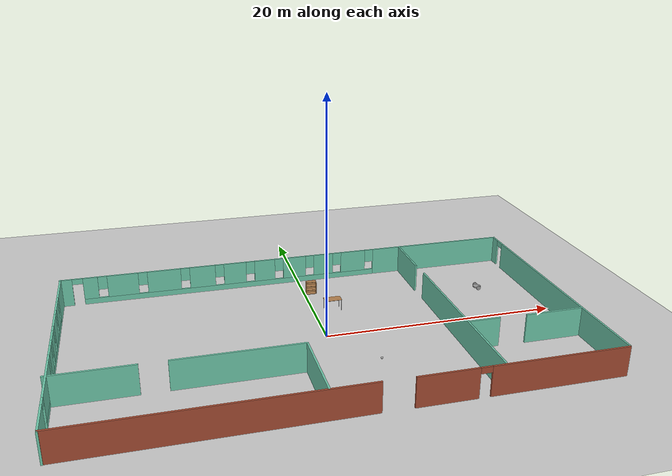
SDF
<sdf version="1.6">
 <world name="default">
  <model name="ground_plane">
   <static>1</static>
   <link name="link">
    <collision name="collision">
     <geometry><plane><normal>0 0 1</normal><size>100 100</size></plane></geometry>
     <surface>
      <contact><collide_bitmask>65535</collide_bitmask></contact>
      <friction><ode><mu>100</mu><mu2>50</mu2></ode></friction>
     </surface>
    </collision>
    <visual name="visual">
     <cast_shadows>0</cast_shadows>
     <geometry><plane><normal>0 0 1</normal><size>100 100</size></plane></geometry>
     <material>
      <script><uri>file://media/materials/scripts/gazebo.material</uri><name>Gazebo/Grey</name></script>
     </material>
    </visual>
   </link>
  </model>
  <model name="office">
   <pose>-0.6589 -0.171152 0 0 -0 0</pose>
   <link name="Wall_0">
    <pose>-20.5476 -0.068828 0 0 0 -1.5708</pose>
    <visual name="Wall_0_Visual_0">
     <pose>-9.5312 0 1.25 0 -0 0</pose>
     <geometry><box><size>3.4376 0.15 2.5</size></box></geometry>
     <material>
      <script><uri>file://media/materials/scripts/gazebo.material</uri><name>Gazebo/Grey</name></script>
      <ambient>0.435294 0.796078 0.67451 1</ambient>
     </material>
     <meta><layer>0</layer></meta>
    </visual>
    <collision name="Wall_0_Collision_0">
     <geometry><box><size>3.4376 0.15 2.5</size></box></geometry>
     <pose>-9.5312 0 1.25 0 -0 0</pose>
    </collision>
    <visual name="Wall_0_Visual_1">
     <pose>9.76077 0 1.25 0 -0 0</pose>
     <geometry><box><size>2.97847 0.15 2.5</size></box></geometry>
     <material>
      <script><uri>file://media/materials/scripts/gazebo.material</uri><name>Gazebo/Grey</name></script>
      <ambient>0.435294 0.796078 0.67451 1</ambient>
     </material>
     <meta><layer>0</layer></meta>
    </visual>
    <collision name="Wall_0_Collision_1">
     <geometry><box><size>2.97847 0.15 2.5</size></box></geometry>
     <pose>9.76077 0 1.25 0 -0 0</pose>
    </collision>
    <visual name="Wall_0_Visual_2">
     <pose>-0.220435 0 0.25 0 -0 0</pose>
     <geometry><box><size>15.1839 0.15 0.5</size></box></geometry>
     <material>
      <script><uri>file://media/materials/scripts/gazebo.material</uri><name>Gazebo/Grey</name></script>
      <ambient>0.435294 0.796078 0.67451 1</ambient>
     </material>
     <meta><layer>0</layer></meta>
    </visual>
    <collision name="Wall_0_Collision_2">
     <geometry><box><size>15.1839 0.15 0.5</size></box></geometry>
     <pose>-0.220435 0 0.25 0 -0 0</pose>
    </collision>
    <visual name="Wall_0_Visual_3">
     <pose>-6.24233 0 1.5 0 -0 0</pose>
     <geometry><box><size>1.54015 0.15 2</size></box></geometry>
     <material>
      <script><uri>file://media/materials/scripts/gazebo.material</uri><name>Gazebo/Grey</name></script>
      <ambient>0.435294 0.796078 0.67451 1</ambient>
     </material>
     <meta><layer>0</layer></meta>
    </visual>
    <collision name="Wall_0_Collision_3">
     <geometry><box><size>1.54015 0.15 2</size></box></geometry>
     <pose>-6.24233 0 1.5 0 -0 0</pose>
    </collision>
    <visual name="Wall_0_Visual_4">
     <pose>-3.69569 0 1.5 0 -0 0</pose>
     <geometry><box><size>1.95312 0.15 2</size></box></geometry>
     <material>
      <script><uri>file://media/materials/scripts/gazebo.material</uri><name>Gazebo/Grey</name></script>
      <ambient>0.435294 0.796078 0.67451 1</ambient>
     </material>
     <meta><layer>0</layer></meta>
    </visual>
    <collision name="Wall_0_Collision_4">
     <geometry><box><size>1.95312 0.15 2</size></box></geometry>
     <pose>-3.69569 0 1.5 0 -0 0</pose>
    </collision>
    <visual name="Wall_0_Visual_5">
     <pose>-1.17199 0 1.5 0 -0 0</pose>
     <geometry><box><size>1.49427 0.15 2</size></box></geometry>
     <material>
      <script><uri>file://media/materials/scripts/gazebo.material</uri><name>Gazebo/Grey</name></script>
      <ambient>0.435294 0.796078 0.67451 1</ambient>
     </material>
     <meta><layer>0</layer></meta>
    </visual>
    <collision name="Wall_0_Collision_5">
     <geometry><box><size>1.49427 0.15 2</size></box></geometry>
     <pose>-1.17199 0 1.5 0 -0 0</pose>
    </collision>
    <visual name="Wall_0_Visual_6">
     <pose>1.05344 0 1.5 0 -0 0</pose>
     <geometry><box><size>1.35661 0.15 2</size></box></geometry>
     <material>
      <script><uri>file://media/materials/scripts/gazebo.material</uri><name>Gazebo/Grey</name></script>
      <ambient>0.435294 0.796078 0.67451 1</ambient>
     </material>
     <meta><layer>0</layer></meta>
    </visual>
    <collision name="Wall_0_Collision_6">
     <geometry><box><size>1.35661 0.15 2</size></box></geometry>
     <pose>1.05344 0 1.5 0 -0 0</pose>
    </collision>
    <visual name="Wall_0_Visual_7">
     <pose>4.95164 0 1.5 0 -0 0</pose>
     <geometry><box><size>4.83978 0.15 2</size></box></geometry>
     <material>
      <script><uri>file://media/materials/scripts/gazebo.material</uri><name>Gazebo/Grey</name></script>
      <ambient>0.435294 0.796078 0.67451 1</ambient>
     </material>
     <meta><layer>0</layer></meta>
    </visual>
    <collision name="Wall_0_Collision_7">
     <geometry><box><size>4.83978 0.15 2</size></box></geometry>
     <pose>4.95164 0 1.5 0 -0 0</pose>
    </collision>
    <visual name="Wall_0_Visual_8">
     <pose>-7.4124 0 1.9 0 -0 0</pose>
     <geometry><box><size>0.8 0.15 1.2</size></box></geometry>
     <material>
      <script><uri>file://media/materials/scripts/gazebo.material</uri><name>Gazebo/Grey</name></script>
      <ambient>0.435294 0.796078 0.67451 1</ambient>
     </material>
     <meta><layer>0</layer></meta>
    </visual>
    <collision name="Wall_0_Collision_8">
     <geometry><box><size>0.8 0.15 1.2</size></box></geometry>
     <pose>-7.4124 0 1.9 0 -0 0</pose>
    </collision>
    <visual name="Wall_0_Visual_9">
     <pose>-5.07225 0 1.9 0 -0 0</pose>
     <geometry><box><size>0.8 0.15 1.2</size></box></geometry>
     <material>
      <script><uri>file://media/materials/scripts/gazebo.material</uri><name>Gazebo/Grey</name></script>
      <ambient>0.435294 0.796078 0.67451 1</ambient>
     </material>
     <meta><layer>0</layer></meta>
    </visual>
    <collision name="Wall_0_Collision_9">
     <geometry><box><size>0.8 0.15 1.2</size></box></geometry>
     <pose>-5.07225 0 1.9 0 -0 0</pose>
    </collision>
    <visual name="Wall_0_Visual_10">
     <pose>-2.31913 0 1.9 0 -0 0</pose>
     <geometry><box><size>0.8 0.15 1.2</size></box></geometry>
     <material>
      <script><uri>file://media/materials/scripts/gazebo.material</uri><name>Gazebo/Grey</name></script>
      <ambient>0.435294 0.796078 0.67451 1</ambient>
     </material>
     <meta><layer>0</layer></meta>
    </visual>
    <collision name="Wall_0_Collision_10">
     <geometry><box><size>0.8 0.15 1.2</size></box></geometry>
     <pose>-2.31913 0 1.9 0 -0 0</pose>
    </collision>
    <visual name="Wall_0_Visual_11">
     <pose>-0.024862 0 1.9 0 -0 0</pose>
     <geometry><box><size>0.8 0.15 1.2</size></box></geometry>
     <material>
      <script><uri>file://media/materials/scripts/gazebo.material</uri><name>Gazebo/Grey</name></script>
      <ambient>0.435294 0.796078 0.67451 1</ambient>
     </material>
     <meta><layer>0</layer></meta>
    </visual>
    <collision name="Wall_0_Collision_11">
     <geometry><box><size>0.8 0.15 1.2</size></box></geometry>
     <pose>-0.024862 0 1.9 0 -0 0</pose>
    </collision>
    <visual name="Wall_0_Visual_12">
     <pose>2.13175 0 1.9 0 -0 0</pose>
     <geometry><box><size>0.8 0.15 1.2</size></box></geometry>
     <material>
      <script><uri>file://media/materials/scripts/gazebo.material</uri><name>Gazebo/Grey</name></script>
      <ambient>0.435294 0.796078 0.67451 1</ambient>
     </material>
     <meta><layer>0</layer></meta>
    </visual>
    <collision name="Wall_0_Collision_12">
     <geometry><box><size>0.8 0.15 1.2</size></box></geometry>
     <pose>2.13175 0 1.9 0 -0 0</pose>
    </collision>
    <visual name="Wall_0_Visual_13">
     <pose>7.82153 0 2.25 0 -0 0</pose>
     <geometry><box><size>0.9 0.15 0.5</size></box></geometry>
     <material>
      <script><uri>file://media/materials/scripts/gazebo.material</uri><name>Gazebo/Grey</name></script>
      <ambient>0.435294 0.796078 0.67451 1</ambient>
     </material>
     <meta><layer>0</layer></meta>
    </visual>
    <collision name="Wall_0_Collision_13">
     <geometry><box><size>0.9 0.15 0.5</size></box></geometry>
     <pose>7.82153 0 2.25 0 -0 0</pose>
    </collision>
   </link>
   <link name="Wall_11">
    <collision name="Wall_11_Collision">
     <geometry><box><size>5 0.15 2.5</size></box></geometry>
     <pose>0 0 1.25 0 -0 0</pose>
    </collision>
    <visual name="Wall_11_Visual">
     <pose>0 0 1.25 0 -0 0</pose>
     <geometry><box><size>5 0.15 2.5</size></box></geometry>
     <material>
      <script><uri>file://media/materials/scripts/gazebo.material</uri><name>Gazebo/Grey</name></script>
      <ambient>0.435294 0.796078 0.67451 1</ambient>
     </material>
     <meta><layer>0</layer></meta>
    </visual>
    <pose>18.3103 -4.77016 0 0 -0 0</pose>
   </link>
   <link name="Wall_13">
    <collision name="Wall_13_Collision">
     <geometry><box><size>6.5 0.15 2.5</size></box></geometry>
     <pose>0 0 1.25 0 -0 0</pose>
    </collision>
    <visual name="Wall_13_Visual">
     <pose>0 0 1.25 0 -0 0</pose>
     <geometry><box><size>6.5 0.15 2.5</size></box></geometry>
     <material>
      <script><uri>file://media/materials/scripts/gazebo.material</uri><name>Gazebo/Grey</name></script>
      <ambient>0.435294 0.796078 0.67451 1</ambient>
     </material>
     <meta><layer>0</layer></meta>
    </visual>
    <pose>-17.6021 -4.77016 0 0 -0 0</pose>
   </link>
   <link name="Wall_15">
    <collision name="Wall_15_Collision">
     <geometry><box><size>10.25 0.15 2.5</size></box></geometry>
     <pose>0 0 1.25 0 -0 0</pose>
    </collision>
    <visual name="Wall_15_Visual">
     <pose>0 0 1.25 0 -0 0</pose>
     <geometry><box><size>10.25 0.15 2.5</size></box></geometry>
     <material>
      <script><uri>file://media/materials/scripts/gazebo.material</uri><name>Gazebo/Grey</name></script>
      <ambient>0.435294 0.796078 0.67451 1</ambient>
     </material>
     <meta><layer>0</layer></meta>
    </visual>
    <pose>-7.1465 -4.77016 0 0 -0 0</pose>
   </link>
   <link name="Wall_16">
    <collision name="Wall_16_Collision">
     <geometry><box><size>6.5 0.15 2.5</size></box></geometry>
     <pose>0 0 1.25 0 -0 0</pose>
    </collision>
    <visual name="Wall_16_Visual">
     <pose>0 0 1.25 0 -0 0</pose>
     <geometry><box><size>6.5 0.15 2.5</size></box></geometry>
     <material>
      <script><uri>file://media/materials/scripts/gazebo.material</uri><name>Gazebo/Grey</name></script>
      <ambient>0.435294 0.796078 0.67451 1</ambient>
     </material>
     <meta><layer>0</layer></meta>
    </visual>
    <pose>-2.0965 -7.94516 0 0 0 -1.5708</pose>
   </link>
   <link name="Wall_18">
    <collision name="Wall_18_Collision">
     <geometry><box><size>22.25 0.15 2.5</size></box></geometry>
     <pose>0 0 1.25 0 -0 0</pose>
    </collision>
    <visual name="Wall_18_Visual">
     <pose>0 0 1.25 0 -0 0</pose>
     <geometry><box><size>22.25 0.15 2.5</size></box></geometry>
     <material>
      <script><uri>file://media/materials/scripts/gazebo.material</uri><name>Gazebo/Bricks</name></script>
      <ambient>1 1 1 1</ambient>
     </material>
     <meta><layer>0</layer></meta>
    </visual>
    <pose>-9.49763 -11.1979 0 0 -0 0</pose>
   </link>
   <link name="Wall_2">
    <pose>20.7771 0.068828 0 0 -0 1.5708</pose>
    <visual name="Wall_2_Visual_0">
     <pose>-0.973723 0 1.25 0 -0 0</pose>
     <geometry><box><size>20.5526 0.15 2.5</size></box></geometry>
     <material>
      <script><uri>file://media/materials/scripts/gazebo.material</uri><name>Gazebo/Grey</name></script>
      <ambient>0.435294 0.796078 0.67451 1</ambient>
     </material>
     <meta><layer>0</layer></meta>
    </visual>
    <collision name="Wall_2_Collision_0">
     <geometry><box><size>20.5526 0.15 2.5</size></box></geometry>
     <pose>-0.973723 0 1.25 0 -0 0</pose>
    </collision>
    <visual name="Wall_2_Visual_1">
     <pose>10.7263 0 1.25 0 -0 0</pose>
     <geometry><box><size>1.04745 0.15 2.5</size></box></geometry>
     <material>
      <script><uri>file://media/materials/scripts/gazebo.material</uri><name>Gazebo/Grey</name></script>
      <ambient>0.435294 0.796078 0.67451 1</ambient>
     </material>
     <meta><layer>0</layer></meta>
    </visual>
    <collision name="Wall_2_Collision_1">
     <geometry><box><size>1.04745 0.15 2.5</size></box></geometry>
     <pose>10.7263 0 1.25 0 -0 0</pose>
    </collision>
    <visual name="Wall_2_Visual_2">
     <pose>9.75255 0 2.25 0 -0 0</pose>
     <geometry><box><size>0.9 0.15 0.5</size></box></geometry>
     <material>
      <script><uri>file://media/materials/scripts/gazebo.material</uri><name>Gazebo/Grey</name></script>
      <ambient>0.435294 0.796078 0.67451 1</ambient>
     </material>
     <meta><layer>0</layer></meta>
    </visual>
    <collision name="Wall_2_Collision_2">
     <geometry><box><size>0.9 0.15 0.5</size></box></geometry>
     <pose>9.75255 0 2.25 0 -0 0</pose>
    </collision>
   </link>
   <link name="Wall_22">
    <pose>12.4086 -11.24 0 0 -0 0</pose>
    <visual name="Wall_22_Visual_0">
     <pose>-5.9779 0 1.25 0 -0 0</pose>
     <geometry><box><size>4.79421 0.15 2.5</size></box></geometry>
     <material>
      <script><uri>file://media/materials/scripts/gazebo.material</uri><name>Gazebo/Bricks</name></script>
      <ambient>1 1 1 1</ambient>
     </material>
     <meta><layer>0</layer></meta>
    </visual>
    <collision name="Wall_22_Collision_0">
     <geometry><box><size>4.79421 0.15 2.5</size></box></geometry>
     <pose>-5.9779 0 1.25 0 -0 0</pose>
    </collision>
    <visual name="Wall_22_Visual_1">
     <pose>2.8471 0 1.25 0 -0 0</pose>
     <geometry><box><size>11.0558 0.15 2.5</size></box></geometry>
     <material>
      <script><uri>file://media/materials/scripts/gazebo.material</uri><name>Gazebo/Bricks</name></script>
      <ambient>1 1 1 1</ambient>
     </material>
     <meta><layer>0</layer></meta>
    </visual>
    <collision name="Wall_22_Collision_1">
     <geometry><box><size>11.0558 0.15 2.5</size></box></geometry>
     <pose>2.8471 0 1.25 0 -0 0</pose>
    </collision>
    <visual name="Wall_22_Visual_2">
     <pose>-3.13079 0 2.25 0 -0 0</pose>
     <geometry><box><size>0.9 0.15 0.5</size></box></geometry>
     <material>
      <script><uri>file://media/materials/scripts/gazebo.material</uri><name>Gazebo/Bricks</name></script>
      <ambient>1 1 1 1</ambient>
     </material>
     <meta><layer>0</layer></meta>
    </visual>
    <collision name="Wall_22_Collision_2">
     <geometry><box><size>0.9 0.15 0.5</size></box></geometry>
     <pose>-3.13079 0 2.25 0 -0 0</pose>
    </collision>
   </link>
   <link name="Wall_3">
    <pose>0.102057 11.2438 0 0 -0 3.14159</pose>
    <visual name="Wall_3_Visual_0">
     <pose>-14.3599 0 1.25 0 -0 0</pose>
     <geometry><box><size>12.7802 0.15 2.5</size></box></geometry>
     <material>
      <script><uri>file://media/materials/scripts/gazebo.material</uri><name>Gazebo/Grey</name></script>
      <ambient>0.435294 0.796078 0.67451 1</ambient>
     </material>
     <meta><layer>0</layer></meta>
    </visual>
    <collision name="Wall_3_Collision_0">
     <geometry><box><size>12.7802 0.15 2.5</size></box></geometry>
     <pose>-14.3599 0 1.25 0 -0 0</pose>
    </collision>
    <visual name="Wall_3_Visual_1">
     <pose>20.2136 0 1.25 0 -0 0</pose>
     <geometry><box><size>1.07276 0.15 2.5</size></box></geometry>
     <material>
      <script><uri>file://media/materials/scripts/gazebo.material</uri><name>Gazebo/Grey</name></script>
      <ambient>0.435294 0.796078 0.67451 1</ambient>
     </material>
     <meta><layer>0</layer></meta>
    </visual>
    <collision name="Wall_3_Collision_1">
     <geometry><box><size>1.07276 0.15 2.5</size></box></geometry>
     <pose>20.2136 0 1.25 0 -0 0</pose>
    </collision>
    <visual name="Wall_3_Visual_2">
     <pose>5.40372 0 0.25 0 -0 0</pose>
     <geometry><box><size>26.747 0.15 0.5</size></box></geometry>
     <material>
      <script><uri>file://media/materials/scripts/gazebo.material</uri><name>Gazebo/Grey</name></script>
      <ambient>0.435294 0.796078 0.67451 1</ambient>
     </material>
     <meta><layer>0</layer></meta>
    </visual>
    <collision name="Wall_3_Collision_2">
     <geometry><box><size>26.747 0.15 0.5</size></box></geometry>
     <pose>5.40372 0 0.25 0 -0 0</pose>
    </collision>
    <visual name="Wall_3_Visual_3">
     <pose>-5.98675 0 1.5 0 -0 0</pose>
     <geometry><box><size>2.36609 0.15 2</size></box></geometry>
     <material>
      <script><uri>file://media/materials/scripts/gazebo.material</uri><name>Gazebo/Grey</name></script>
      <ambient>0.435294 0.796078 0.67451 1</ambient>
     </material>
     <meta><layer>0</layer></meta>
    </visual>
    <collision name="Wall_3_Collision_3">
     <geometry><box><size>2.36609 0.15 2</size></box></geometry>
     <pose>-5.98675 0 1.5 0 -0 0</pose>
    </collision>
    <visual name="Wall_3_Visual_4">
     <pose>-3.07303 0 1.5 0 -0 0</pose>
     <geometry><box><size>1.86135 0.15 2</size></box></geometry>
     <material>
      <script><uri>file://media/materials/scripts/gazebo.material</uri><name>Gazebo/Grey</name></script>
      <ambient>0.435294 0.796078 0.67451 1</ambient>
     </material>
     <meta><layer>0</layer></meta>
    </visual>
    <collision name="Wall_3_Collision_4">
     <geometry><box><size>1.86135 0.15 2</size></box></geometry>
     <pose>-3.07303 0 1.5 0 -0 0</pose>
    </collision>
    <visual name="Wall_3_Visual_5">
     <pose>-0.274028 0 1.5 0 -0 0</pose>
     <geometry><box><size>2.13666 0.15 2</size></box></geometry>
     <material>
      <script><uri>file://media/materials/scripts/gazebo.material</uri><name>Gazebo/Grey</name></script>
      <ambient>0.435294 0.796078 0.67451 1</ambient>
     </material>
     <meta><layer>0</layer></meta>
    </visual>
    <collision name="Wall_3_Collision_5">
     <geometry><box><size>2.13666 0.15 2</size></box></geometry>
     <pose>-0.274028 0 1.5 0 -0 0</pose>
    </collision>
    <visual name="Wall_3_Visual_6">
     <pose>2.54792 0 1.5 0 -0 0</pose>
     <geometry><box><size>1.90724 0.15 2</size></box></geometry>
     <material>
      <script><uri>file://media/materials/scripts/gazebo.material</uri><name>Gazebo/Grey</name></script>
      <ambient>0.435294 0.796078 0.67451 1</ambient>
     </material>
     <meta><layer>0</layer></meta>
    </visual>
    <collision name="Wall_3_Collision_6">
     <geometry><box><size>1.90724 0.15 2</size></box></geometry>
     <pose>2.54792 0 1.5 0 -0 0</pose>
    </collision>
    <visual name="Wall_3_Visual_7">
     <pose>5.32398 0 1.5 0 -0 0</pose>
     <geometry><box><size>2.04489 0.15 2</size></box></geometry>
     <material>
      <script><uri>file://media/materials/scripts/gazebo.material</uri><name>Gazebo/Grey</name></script>
      <ambient>0.435294 0.796078 0.67451 1</ambient>
     </material>
     <meta><layer>0</layer></meta>
    </visual>
    <collision name="Wall_3_Collision_7">
     <geometry><box><size>2.04489 0.15 2</size></box></geometry>
     <pose>5.32398 0 1.5 0 -0 0</pose>
    </collision>
    <visual name="Wall_3_Visual_8">
     <pose>8.30653 0 1.5 0 -0 0</pose>
     <geometry><box><size>2.3202 0.15 2</size></box></geometry>
     <material>
      <script><uri>file://media/materials/scripts/gazebo.material</uri><name>Gazebo/Grey</name></script>
      <ambient>0.435294 0.796078 0.67451 1</ambient>
     </material>
     <meta><layer>0</layer></meta>
    </visual>
    <collision name="Wall_3_Collision_8">
     <geometry><box><size>2.3202 0.15 2</size></box></geometry>
     <pose>8.30653 0 1.5 0 -0 0</pose>
    </collision>
    <visual name="Wall_3_Visual_9">
     <pose>11.7479 0 1.5 0 -0 0</pose>
     <geometry><box><size>2.9626 0.15 2</size></box></geometry>
     <material>
      <script><uri>file://media/materials/scripts/gazebo.material</uri><name>Gazebo/Grey</name></script>
      <ambient>0.435294 0.796078 0.67451 1</ambient>
     </material>
     <meta><layer>0</layer></meta>
    </visual>
    <collision name="Wall_3_Collision_9">
     <geometry><box><size>2.9626 0.15 2</size></box></geometry>
     <pose>11.7479 0 1.5 0 -0 0</pose>
    </collision>
    <visual name="Wall_3_Visual_10">
     <pose>15.3729 0 1.5 0 -0 0</pose>
     <geometry><box><size>2.68729 0.15 2</size></box></geometry>
     <material>
      <script><uri>file://media/materials/scripts/gazebo.material</uri><name>Gazebo/Grey</name></script>
      <ambient>0.435294 0.796078 0.67451 1</ambient>
     </material>
     <meta><layer>0</layer></meta>
    </visual>
    <collision name="Wall_3_Collision_10">
     <geometry><box><size>2.68729 0.15 2</size></box></geometry>
     <pose>15.3729 0 1.5 0 -0 0</pose>
    </collision>
    <visual name="Wall_3_Visual_11">
     <pose>18.1469 0 1.5 0 -0 0</pose>
     <geometry><box><size>1.26073 0.15 2</size></box></geometry>
     <material>
      <script><uri>file://media/materials/scripts/gazebo.material</uri><name>Gazebo/Grey</name></script>
      <ambient>0.435294 0.796078 0.67451 1</ambient>
     </material>
     <meta><layer>0</layer></meta>
    </visual>
    <collision name="Wall_3_Collision_11">
     <geometry><box><size>1.26073 0.15 2</size></box></geometry>
     <pose>18.1469 0 1.5 0 -0 0</pose>
    </collision>
    <visual name="Wall_3_Visual_12">
     <pose>-7.5698 0 1.9 0 -0 0</pose>
     <geometry><box><size>0.8 0.15 1.2</size></box></geometry>
     <material>
      <script><uri>file://media/materials/scripts/gazebo.material</uri><name>Gazebo/Grey</name></script>
      <ambient>0.435294 0.796078 0.67451 1</ambient>
     </material>
     <meta><layer>0</layer></meta>
    </visual>
    <collision name="Wall_3_Collision_12">
     <geometry><box><size>0.8 0.15 1.2</size></box></geometry>
     <pose>-7.5698 0 1.9 0 -0 0</pose>
    </collision>
    <visual name="Wall_3_Visual_13">
     <pose>-4.40371 0 1.9 0 -0 0</pose>
     <geometry><box><size>0.8 0.15 1.2</size></box></geometry>
     <material>
      <script><uri>file://media/materials/scripts/gazebo.material</uri><name>Gazebo/Grey</name></script>
      <ambient>0.435294 0.796078 0.67451 1</ambient>
     </material>
     <meta><layer>0</layer></meta>
    </visual>
    <collision name="Wall_3_Collision_13">
     <geometry><box><size>0.8 0.15 1.2</size></box></geometry>
     <pose>-4.40371 0 1.9 0 -0 0</pose>
    </collision>
    <visual name="Wall_3_Visual_14">
     <pose>-1.74236 0 1.9 0 -0 0</pose>
     <geometry><box><size>0.8 0.15 1.2</size></box></geometry>
     <material>
      <script><uri>file://media/materials/scripts/gazebo.material</uri><name>Gazebo/Grey</name></script>
      <ambient>0.435294 0.796078 0.67451 1</ambient>
     </material>
     <meta><layer>0</layer></meta>
    </visual>
    <collision name="Wall_3_Collision_14">
     <geometry><box><size>0.8 0.15 1.2</size></box></geometry>
     <pose>-1.74236 0 1.9 0 -0 0</pose>
    </collision>
    <visual name="Wall_3_Visual_15">
     <pose>1.1943 0 1.9 0 -0 0</pose>
     <geometry><box><size>0.8 0.15 1.2</size></box></geometry>
     <material>
      <script><uri>file://media/materials/scripts/gazebo.material</uri><name>Gazebo/Grey</name></script>
      <ambient>0.435294 0.796078 0.67451 1</ambient>
     </material>
     <meta><layer>0</layer></meta>
    </visual>
    <collision name="Wall_3_Collision_15">
     <geometry><box><size>0.8 0.15 1.2</size></box></geometry>
     <pose>1.1943 0 1.9 0 -0 0</pose>
    </collision>
    <visual name="Wall_3_Visual_16">
     <pose>3.90154 0 1.9 0 -0 0</pose>
     <geometry><box><size>0.8 0.15 1.2</size></box></geometry>
     <material>
      <script><uri>file://media/materials/scripts/gazebo.material</uri><name>Gazebo/Grey</name></script>
      <ambient>0.435294 0.796078 0.67451 1</ambient>
     </material>
     <meta><layer>0</layer></meta>
    </visual>
    <collision name="Wall_3_Collision_16">
     <geometry><box><size>0.8 0.15 1.2</size></box></geometry>
     <pose>3.90154 0 1.9 0 -0 0</pose>
    </collision>
    <visual name="Wall_3_Visual_17">
     <pose>6.74643 0 1.9 0 -0 0</pose>
     <geometry><box><size>0.8 0.15 1.2</size></box></geometry>
     <material>
      <script><uri>file://media/materials/scripts/gazebo.material</uri><name>Gazebo/Grey</name></script>
      <ambient>0.435294 0.796078 0.67451 1</ambient>
     </material>
     <meta><layer>0</layer></meta>
    </visual>
    <collision name="Wall_3_Collision_17">
     <geometry><box><size>0.8 0.15 1.2</size></box></geometry>
     <pose>6.74643 0 1.9 0 -0 0</pose>
    </collision>
    <visual name="Wall_3_Visual_18">
     <pose>9.86663 0 1.9 0 -0 0</pose>
     <geometry><box><size>0.8 0.15 1.2</size></box></geometry>
     <material>
      <script><uri>file://media/materials/scripts/gazebo.material</uri><name>Gazebo/Grey</name></script>
      <ambient>0.435294 0.796078 0.67451 1</ambient>
     </material>
     <meta><layer>0</layer></meta>
    </visual>
    <collision name="Wall_3_Collision_18">
     <geometry><box><size>0.8 0.15 1.2</size></box></geometry>
     <pose>9.86663 0 1.9 0 -0 0</pose>
    </collision>
    <visual name="Wall_3_Visual_19">
     <pose>13.6292 0 1.9 0 -0 0</pose>
     <geometry><box><size>0.8 0.15 1.2</size></box></geometry>
     <material>
      <script><uri>file://media/materials/scripts/gazebo.material</uri><name>Gazebo/Grey</name></script>
      <ambient>0.435294 0.796078 0.67451 1</ambient>
     </material>
     <meta><layer>0</layer></meta>
    </visual>
    <collision name="Wall_3_Collision_19">
     <geometry><box><size>0.8 0.15 1.2</size></box></geometry>
     <pose>13.6292 0 1.9 0 -0 0</pose>
    </collision>
    <visual name="Wall_3_Visual_20">
     <pose>17.1165 0 1.9 0 -0 0</pose>
     <geometry><box><size>0.8 0.15 1.2</size></box></geometry>
     <material>
      <script><uri>file://media/materials/scripts/gazebo.material</uri><name>Gazebo/Grey</name></script>
      <ambient>0.435294 0.796078 0.67451 1</ambient>
     </material>
     <meta><layer>0</layer></meta>
    </visual>
    <collision name="Wall_3_Collision_20">
     <geometry><box><size>0.8 0.15 1.2</size></box></geometry>
     <pose>17.1165 0 1.9 0 -0 0</pose>
    </collision>
    <visual name="Wall_3_Visual_21">
     <pose>19.2272 0 2.25 0 -0 0</pose>
     <geometry><box><size>0.9 0.15 0.5</size></box></geometry>
     <material>
      <script><uri>file://media/materials/scripts/gazebo.material</uri><name>Gazebo/Grey</name></script>
      <ambient>0.435294 0.796078 0.67451 1</ambient>
     </material>
     <meta><layer>0</layer></meta>
    </visual>
    <collision name="Wall_3_Collision_21">
     <geometry><box><size>0.9 0.15 0.5</size></box></geometry>
     <pose>19.2272 0 2.25 0 -0 0</pose>
    </collision>
   </link>
   <link name="Wall_5">
    <collision name="Wall_5_Collision">
     <geometry><box><size>4.75 0.15 2.5</size></box></geometry>
     <pose>0 0 1.25 0 -0 0</pose>
    </collision>
    <visual name="Wall_5_Visual">
     <pose>0 0 1.25 0 -0 0</pose>
     <geometry><box><size>4.75 0.15 2.5</size></box></geometry>
     <material>
      <script><uri>file://media/materials/scripts/gazebo.material</uri><name>Gazebo/Grey</name></script>
      <ambient>0.435294 0.796078 0.67451 1</ambient>
     </material>
     <meta><layer>0</layer></meta>
    </visual>
    <pose>10.7462 8.89794 0 0 0 -1.5708</pose>
   </link>
   <link name="Wall_7">
    <collision name="Wall_7_Collision">
     <geometry><box><size>16 0.15 2.5</size></box></geometry>
     <pose>0 0 1.25 0 -0 0</pose>
    </collision>
    <visual name="Wall_7_Visual">
     <pose>0 0 1.25 0 -0 0</pose>
     <geometry><box><size>16 0.15 2.5</size></box></geometry>
     <material>
      <script><uri>file://media/materials/scripts/gazebo.material</uri><name>Gazebo/Grey</name></script>
      <ambient>0.435294 0.796078 0.67451 1</ambient>
     </material>
     <meta><layer>0</layer></meta>
    </visual>
    <pose>10.8379 -3.15101 0 0 0 -1.5708</pose>
   </link>
   <link name="Wall_9">
    <collision name="Wall_9_Collision">
     <geometry><box><size>2.75 0.15 2.5</size></box></geometry>
     <pose>0 0 1.25 0 -0 0</pose>
    </collision>
    <visual name="Wall_9_Visual">
     <pose>0 0 1.25 0 -0 0</pose>
     <geometry><box><size>2.75 0.15 2.5</size></box></geometry>
     <material>
      <script><uri>file://media/materials/scripts/gazebo.material</uri><name>Gazebo/Grey</name></script>
      <ambient>0.435294 0.796078 0.67451 1</ambient>
     </material>
     <meta><layer>0</layer></meta>
    </visual>
    <pose>12.1838 -4.67839 0 0 -0 0</pose>
   </link>
   <static>1</static>
  </model>
  <model name="bookshelf_1">
   <static>1</static>
   <link name="link">
    <inertial><mass>1</mass></inertial>
    <collision name="back">
     <pose>0 0.005 0.6 0 -0 0</pose>
     <geometry><box><size>0.9 0.01 1.2</size></box></geometry>
    </collision>
    <visual name="visual1">
     <pose>0 0.005 0.6 0 -0 0</pose>
     <geometry><box><size>0.9 0.01 1.2</size></box></geometry>
     <material>
      <script><uri>file://media/materials/scripts/gazebo.material</uri><name>Gazebo/Wood</name></script>
     </material>
    </visual>
    <collision name="left_side">
     <pose>0.45 -0.195 0.6 0 -0 0</pose>
     <geometry><box><size>0.02 0.4 1.2</size></box></geometry>
    </collision>
    <visual name="visual2">
     <pose>0.45 -0.195 0.6 0 -0 0</pose>
     <geometry><box><size>0.02 0.4 1.2</size></box></geometry>
     <material>
      <script><uri>file://media/materials/scripts/gazebo.material</uri><name>Gazebo/Wood</name></script>
     </material>
    </visual>
    <collision name="right_side">
     <pose>-0.45 -0.195 0.6 0 -0 0</pose>
     <geometry><box><size>0.02 0.4 1.2</size></box></geometry>
    </collision>
    <visual name="visual3">
     <pose>-0.45 -0.195 0.6 0 -0 0</pose>
     <geometry><box><size>0.02 0.4 1.2</size></box></geometry>
     <material>
      <script><uri>file://media/materials/scripts/gazebo.material</uri><name>Gazebo/Wood</name></script>
     </material>
    </visual>
    <collision name="bottom">
     <pose>0 -0.195 0.03 0 -0 0</pose>
     <geometry><box><size>0.88 0.4 0.06</size></box></geometry>
    </collision>
    <visual name="visual4">
     <pose>0 -0.195 0.03 0 -0 0</pose>
     <geometry><box><size>0.88 0.4 0.06</size></box></geometry>
     <material>
      <script><uri>file://media/materials/scripts/gazebo.material</uri><name>Gazebo/Wood</name></script>
     </material>
    </visual>
    <collision name="top">
     <pose>0 -0.195 1.19 0 -0 0</pose>
     <geometry><box><size>0.88 0.4 0.02</size></box></geometry>
    </collision>
    <visual name="visual5">
     <pose>0 -0.195 1.19 0 -0 0</pose>
     <geometry><box><size>0.88 0.4 0.02</size></box></geometry>
     <material>
      <script><uri>file://media/materials/scripts/gazebo.material</uri><name>Gazebo/Wood</name></script>
     </material>
    </visual>
    <collision name="low_shelf">
     <pose>0 -0.195 0.43 0 -0 0</pose>
     <geometry><box><size>0.88 0.4 0.02</size></box></geometry>
    </collision>
    <visual name="visual6">
     <pose>0 -0.195 0.43 0 -0 0</pose>
     <geometry><box><size>0.88 0.4 0.02</size></box></geometry>
     <material>
      <script><uri>file://media/materials/scripts/gazebo.material</uri><name>Gazebo/Wood</name></script>
     </material>
    </visual>
    <collision name="high_shelf">
     <pose>0 -0.195 0.8 0 -0 0</pose>
     <geometry><box><size>0.88 0.4 0.02</size></box></geometry>
    </collision>
    <visual name="visual7">
     <pose>0 -0.195 0.8 0 -0 0</pose>
     <geometry><box><size>0.88 0.4 0.02</size></box></geometry>
     <material>
      <script><uri>file://media/materials/scripts/gazebo.material</uri><name>Gazebo/Wood</name></script>
     </material>
    </visual>
   </link>
   <pose>0.626571 8.34129 0 0 -0 0</pose>
  </model>
  <model name="table_1">
   <static>1</static>
   <link name="link">
    <collision name="surface">
     <pose>0 0 1 0 -0 0</pose>
     <geometry><box><size>1.5 0.8 0.03</size></box></geometry>
     <surface><friction><ode><mu>0.6</mu><mu2>0.6</mu2></ode></friction></surface>
    </collision>
    <visual name="visual1">
     <pose>0 0 1 0 -0 0</pose>
     <geometry><box><size>1.5 0.8 0.03</size></box></geometry>
     <material>
      <script><uri>file://media/materials/scripts/gazebo.material</uri><name>Gazebo/Wood</name></script>
     </material>
    </visual>
    <collision name="front_left_leg">
     <pose>0.68 0.38 0.5 0 -0 0</pose>
     <geometry><cylinder><radius>0.02</radius><length>1</length></cylinder></geometry>
    </collision>
    <visual name="front_left_leg">
     <pose>0.68 0.38 0.5 0 -0 0</pose>
     <geometry><cylinder><radius>0.02</radius><length>1</length></cylinder></geometry>
     <material>
      <script><uri>file://media/materials/scripts/gazebo.material</uri><name>Gazebo/Grey</name></script>
     </material>
    </visual>
    <collision name="front_right_leg">
     <pose>0.68 -0.38 0.5 0 -0 0</pose>
     <geometry><cylinder><radius>0.02</radius><length>1</length></cylinder></geometry>
    </collision>
    <visual name="front_right_leg">
     <pose>0.68 -0.38 0.5 0 -0 0</pose>
     <geometry><cylinder><radius>0.02</radius><length>1</length></cylinder></geometry>
     <material>
      <script><uri>file://media/materials/scripts/gazebo.material</uri><name>Gazebo/Grey</name></script>
     </material>
    </visual>
    <collision name="back_right_leg">
     <pose>-0.68 -0.38 0.5 0 -0 0</pose>
     <geometry><cylinder><radius>0.02</radius><length>1</length></cylinder></geometry>
    </collision>
    <visual name="back_right_leg">
     <pose>-0.68 -0.38 0.5 0 -0 0</pose>
     <geometry><cylinder><radius>0.02</radius><length>1</length></cylinder></geometry>
     <material>
      <script><uri>file://media/materials/scripts/gazebo.material</uri><name>Gazebo/Grey</name></script>
     </material>
    </visual>
    <collision name="back_left_leg">
     <pose>-0.68 0.38 0.5 0 -0 0</pose>
     <geometry><cylinder><radius>0.02</radius><length>1</length></cylinder></geometry>
    </collision>
    <visual name="back_left_leg">
     <pose>-0.68 0.38 0.5 0 -0 0</pose>
     <geometry><cylinder><radius>0.02</radius><length>1</length></cylinder></geometry>
     <material>
      <script><uri>file://media/materials/scripts/gazebo.material</uri><name>Gazebo/Grey</name></script>
     </material>
    </visual>
   </link>
   <pose>1.71465 4.57521 0 0 -0 0</pose>
  </model>
  <model name="irobot_clone">
   <link name="link_0">
    <pose>0 0 0.2 0 -0 0</pose>
    <inertial>
     <mass>1</mass>
     <inertia><ixx>0.145833</ixx><ixy>0</ixy><ixz>0</ixz><iyy>0.145833</iyy><iyz>0</iyz><izz>0.125</izz></inertia>
    </inertial>
    <visual name="visual">
     <geometry><cylinder><radius>0.35</radius><length>0.1</length></cylinder></geometry>
     <material>
      <lighting>1</lighting>
      <script><uri>file://media/materials/scripts/gazebo.material</uri><name>Gazebo/Grey</name></script>
      <shader type="pixel"><normal_map>__default__</normal_map></shader>
      <ambient>0.3 0.3 0.3 1</ambient>
      <diffuse>0.7 0.7 0.7 1</diffuse>
      <specular>0.01 0.01 0.01 1</specular>
      <emissive>0 0 0 1</emissive>
     </material>
    </visual>
    <collision name="collision">
     <geometry><cylinder><radius>0.35</radius><length>0.1</length></cylinder></geometry>
     <surface>
      <friction>
       <ode><mu>1</mu><mu2>1</mu2><fdir1>0 0 0</fdir1><slip1>0</slip1><slip2>0</slip2></ode>
       <torsional>
        <coefficient>1</coefficient>
        <patch_radius>0</patch_radius>
        <surface_radius>0</surface_radius>
        <use_patch_radius>1</use_patch_radius>
        <ode><slip>0</slip></ode>
       </torsional>
      </friction>
      <bounce><restitution_coefficient>0</restitution_coefficient><threshold>1e+06</threshold></bounce>
      <contact>
       <collide_without_contact>0</collide_without_contact>
       <collide_without_contact_bitmask>1</collide_without_contact_bitmask>
       <collide_bitmask>1</collide_bitmask>
       <ode>
        <soft_cfm>0</soft_cfm>
        <soft_erp>0.2</soft_erp>
        <kp>1e+13</kp>
        <kd>1</kd>
        <max_vel>0.01</max_vel>
        <min_depth>0</min_depth>
       </ode>
       <bullet>
        <split_impulse>1</split_impulse>
        <split_impulse_penetration_threshold>-0.01</split_impulse_penetration_threshold>
        <soft_cfm>0</soft_cfm>
        <soft_erp>0.2</soft_erp>
        <kp>1e+13</kp>
        <kd>1</kd>
       </bullet>
      </contact>
     </surface>
    </collision>
   </link>
   <link name="link_2">
    <pose>0 -0.400019 0.200174 1.5707 -0 0</pose>
    <inertial>
     <mass>1</mass>
     <inertia><ixx>0.145833</ixx><ixy>0</ixy><ixz>0</ixz><iyy>0.145833</iyy><iyz>0</iyz><izz>0.125</izz></inertia>
    </inertial>
    <visual name="visual">
     <geometry><cylinder><radius>0.2</radius><length>0.1</length></cylinder></geometry>
     <material>
      <lighting>1</lighting>
      <script><uri>file://media/materials/scripts/gazebo.material</uri><name>Gazebo/Grey</name></script>
      <shader type="pixel"><normal_map>__default__</normal_map></shader>
      <ambient>0.3 0.3 0.3 1</ambient>
      <diffuse>0.7 0.7 0.7 1</diffuse>
      <specular>0.01 0.01 0.01 1</specular>
      <emissive>0 0 0 1</emissive>
     </material>
    </visual>
    <collision name="collision">
     <geometry><cylinder><radius>0.2</radius><length>0.1</length></cylinder></geometry>
     <surface>
      <friction>
       <ode><mu>1</mu><mu2>1</mu2><fdir1>0 0 0</fdir1><slip1>0</slip1><slip2>0</slip2></ode>
       <torsional>
        <coefficient>1</coefficient>
        <patch_radius>0</patch_radius>
        <surface_radius>0</surface_radius>
        <use_patch_radius>1</use_patch_radius>
        <ode><slip>0</slip></ode>
       </torsional>
      </friction>
      <bounce><restitution_coefficient>0</restitution_coefficient><threshold>1e+06</threshold></bounce>
      <contact>
       <collide_without_contact>0</collide_without_contact>
       <collide_without_contact_bitmask>1</collide_without_contact_bitmask>
       <collide_bitmask>1</collide_bitmask>
       <ode>
        <soft_cfm>0</soft_cfm>
        <soft_erp>0.2</soft_erp>
        <kp>1e+13</kp>
        <kd>1</kd>
        <max_vel>0.01</max_vel>
        <min_depth>0</min_depth>
       </ode>
       <bullet>
        <split_impulse>1</split_impulse>
        <split_impulse_penetration_threshold>-0.01</split_impulse_penetration_threshold>
        <soft_cfm>0</soft_cfm>
        <soft_erp>0.2</soft_erp>
        <kp>1e+13</kp>
        <kd>1</kd>
       </bullet>
      </contact>
     </surface>
    </collision>
   </link>
   <link name="link_2_clone">
    <pose>0 0.400019 0.200174 1.5707 -0 0</pose>
    <inertial>
     <mass>1</mass>
     <inertia><ixx>0.145833</ixx><ixy>0</ixy><ixz>0</ixz><iyy>0.145833</iyy><iyz>0</iyz><izz>0.125</izz></inertia>
    </inertial>
    <visual name="visual">
     <geometry><cylinder><radius>0.2</radius><length>0.1</length></cylinder></geometry>
     <material>
      <lighting>1</lighting>
      <script><uri>file://media/materials/scripts/gazebo.material</uri><name>Gazebo/Grey</name></script>
      <shader type="pixel"><normal_map>__default__</normal_map></shader>
      <ambient>0.3 0.3 0.3 1</ambient>
      <diffuse>0.7 0.7 0.7 1</diffuse>
      <specular>0.01 0.01 0.01 1</specular>
      <emissive>0 0 0 1</emissive>
     </material>
    </visual>
    <collision name="collision">
     <geometry><cylinder><radius>0.2</radius><length>0.1</length></cylinder></geometry>
     <surface>
      <friction>
       <ode><mu>1</mu><mu2>1</mu2><fdir1>0 0 0</fdir1><slip1>0</slip1><slip2>0</slip2></ode>
       <torsional>
        <coefficient>1</coefficient>
        <patch_radius>0</patch_radius>
        <surface_radius>0</surface_radius>
        <use_patch_radius>1</use_patch_radius>
        <ode><slip>0</slip></ode>
       </torsional>
      </friction>
      <bounce><restitution_coefficient>0</restitution_coefficient><threshold>1e+06</threshold></bounce>
      <contact>
       <collide_without_contact>0</collide_without_contact>
       <collide_without_contact_bitmask>1</collide_without_contact_bitmask>
       <collide_bitmask>1</collide_bitmask>
       <ode>
        <soft_cfm>0</soft_cfm>
        <soft_erp>0.2</soft_erp>
        <kp>1e+13</kp>
        <kd>1</kd>
        <max_vel>0.01</max_vel>
        <min_depth>0</min_depth>
       </ode>
       <bullet>
        <split_impulse>1</split_impulse>
        <split_impulse_penetration_threshold>-0.01</split_impulse_penetration_threshold>
        <soft_cfm>0</soft_cfm>
        <soft_erp>0.2</soft_erp>
        <kp>1e+13</kp>
        <kd>1</kd>
       </bullet>
      </contact>
     </surface>
    </collision>
   </link>
   <joint name="link_0_JOINT_0" type="revolute">
    <parent>link_0</parent>
    <child>link_2</child>
    <axis>
     <xyz>0 0 1</xyz>
     <use_parent_model_frame>0</use_parent_model_frame>
     <limit>
      <lower>-1.79769e+308</lower>
      <upper>1.79769e+308</upper>
      <effort>-1</effort>
      <velocity>-1</velocity>
     </limit>
     <dynamics>
      <spring_reference>0</spring_reference>
      <spring_stiffness>0</spring_stiffness>
      <damping>0</damping>
     </dynamics>
    </axis>
    <physics>
     <ode><limit><cfm>0</cfm><erp>0.2</erp></limit><suspension><cfm>0</cfm><erp>0.2</erp></suspension></ode>
    </physics>
   </joint>
   <joint name="link_0_JOINT_1" type="revolute">
    <parent>link_0</parent>
    <child>link_2_clone</child>
    <axis>
     <xyz>0 0 1</xyz>
     <use_parent_model_frame>0</use_parent_model_frame>
     <limit>
      <lower>-1.79769e+308</lower>
      <upper>1.79769e+308</upper>
      <effort>-1</effort>
      <velocity>-1</velocity>
     </limit>
     <dynamics>
      <spring_reference>0</spring_reference>
      <spring_stiffness>0</spring_stiffness>
      <damping>0</damping>
     </dynamics>
    </axis>
    <physics>
     <ode><limit><cfm>0</cfm><erp>0.2</erp></limit><suspension><cfm>0</cfm><erp>0.2</erp></suspension></ode>
    </physics>
   </joint>
   <static>0</static>
   <pose>15.8125 5.38642 -0.000169 0 -0 0</pose>
  </model>
  <model name="my_ball">
   <link name="link_0">
    <inertial>
     <mass>1</mass>
     <inertia><ixx>0.1</ixx><ixy>0</ixy><ixz>0</ixz><iyy>0.1</iyy><iyz>0</iyz><izz>0.1</izz></inertia>
    </inertial>
    <visual name="visual">
     <geometry><sphere><radius>0.1</radius></sphere></geometry>
     <material>
      <lighting>1</lighting>
      <script><uri>file://media/materials/scripts/gazebo.material</uri><name>Gazebo/Grey</name></script>
      <shader type="pixel"><normal_map>__default__</normal_map></shader>
      <ambient>1 1 1 1</ambient>
      <diffuse>1 1 1 1</diffuse>
      <specular>1 1 1 1</specular>
      <emissive>1 1 1 1</emissive>
     </material>
    </visual>
    <collision name="collision">
     <geometry><sphere><radius>0.1</radius></sphere></geometry>
     <surface>
      <friction>
       <ode><mu>1</mu><mu2>1</mu2><fdir1>0 0 0</fdir1><slip1>0</slip1><slip2>0</slip2></ode>
       <torsional>
        <coefficient>1</coefficient>
        <patch_radius>0</patch_radius>
        <surface_radius>0</surface_radius>
        <use_patch_radius>1</use_patch_radius>
        <ode><slip>0</slip></ode>
       </torsional>
      </friction>
      <bounce><restitution_coefficient>0</restitution_coefficient><threshold>1e+06</threshold></bounce>
      <contact>
       <collide_without_contact>0</collide_without_contact>
       <collide_without_contact_bitmask>1</collide_without_contact_bitmask>
       <collide_bitmask>1</collide_bitmask>
       <ode>
        <soft_cfm>0</soft_cfm>
        <soft_erp>0.2</soft_erp>
        <kp>1e+13</kp>
        <kd>1</kd>
        <max_vel>0.01</max_vel>
        <min_depth>0</min_depth>
       </ode>
       <bullet>
        <split_impulse>1</split_impulse>
        <split_impulse_penetration_threshold>-0.01</split_impulse_penetration_threshold>
        <soft_cfm>0</soft_cfm>
        <soft_erp>0.2</soft_erp>
        <kp>1e+13</kp>
        <kd>1</kd>
       </bullet>
      </contact>
     </surface>
    </collision>
   </link>
   <static>0</static>
   <pose>3.24396 -4.56383 0.1 0 -0 0</pose>
  </model>
 </world>
</sdf>
